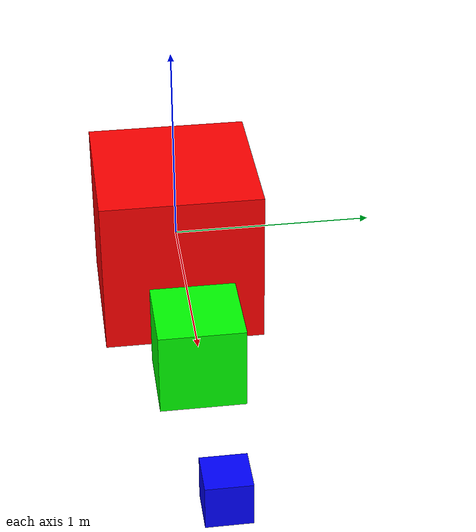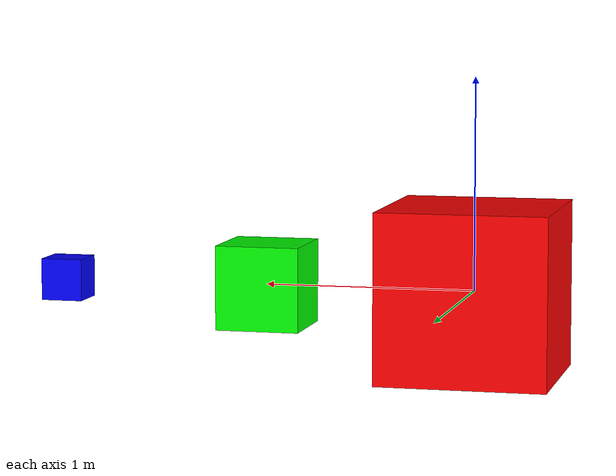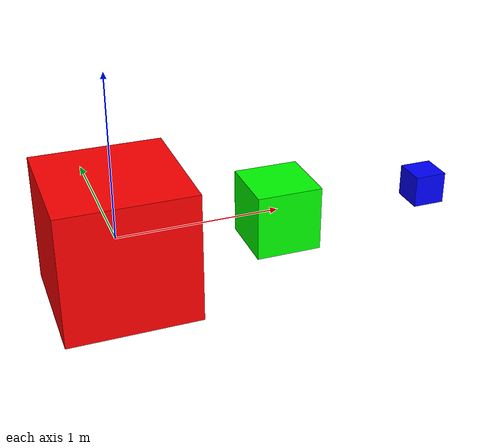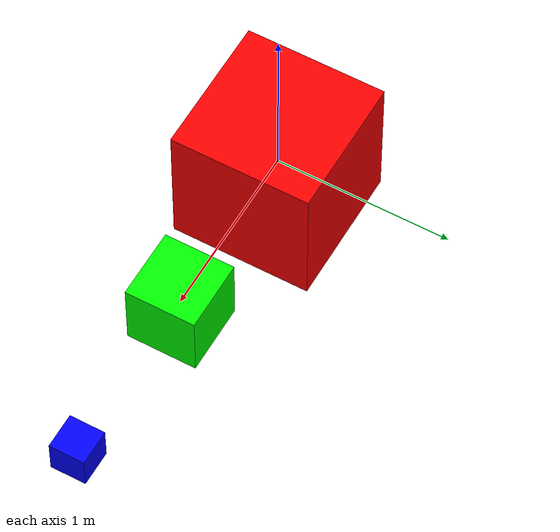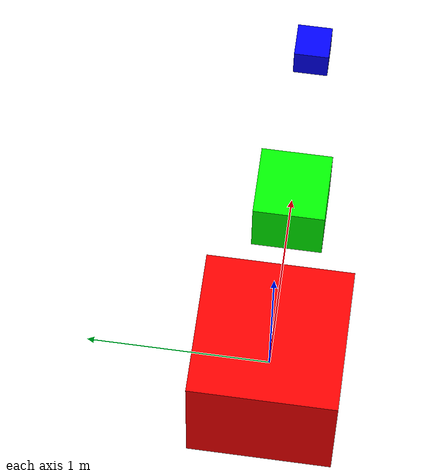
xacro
<robot xmlns:xacro="http://www.ros.org/wiki/xacro" name="blocks">

  <xacro:property name="block1_size" value="0.8" />
  <xacro:property name="block2_size" value="0.4" />
  <xacro:property name="block3_size" value="0.2" />

  <xacro:macro name="block" params="name size color">
    <link name="${name}">
      <visual>
        <geometry>
          <box size="${size} ${size} ${size}"/>
        </geometry>
        <origin xyz="0 0 0"/>
        <material name="${color}" />
      </visual>
    </link>
  </xacro:macro>

  <material name="red">
    <color rgba="1 0 0 1"/>
  </material>

  <material name="green">
    <color rgba="0 1 0 1"/>
  </material>

  <material name="blue">
    <color rgba="0 0 1 1"/>
  </material>

  <link name="world"/>

  <joint name="world_block1_joint" type="fixed">
    <parent link="world"/>
    <child link="block1"/>
  </joint>

  <xacro:block name="block1" size="${block1_size}" color="red" />

  <joint name="block1_block2_joint" type="continuous">
    <parent link="block1"/>
    <child link="block2"/>
    <origin xyz="1 0 0"/>
  </joint>

  <xacro:block name="block2" size="${block2_size}" color="green" />

  <joint name="block2_block3_joint" type="continuous">
    <parent link="block2"/>
    <child link="block3"/>
    <origin xyz="1 0 0"/>
  </joint>

  <xacro:block name="block3" size="${block3_size}" color="blue" />

 </robot>
